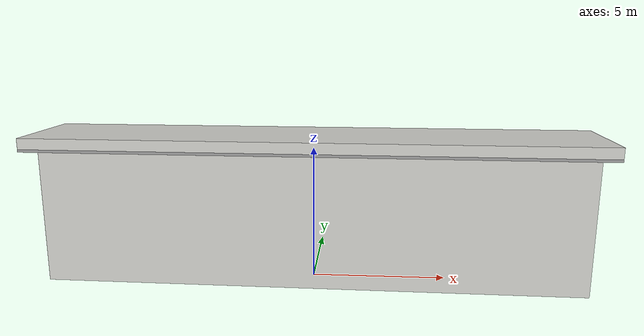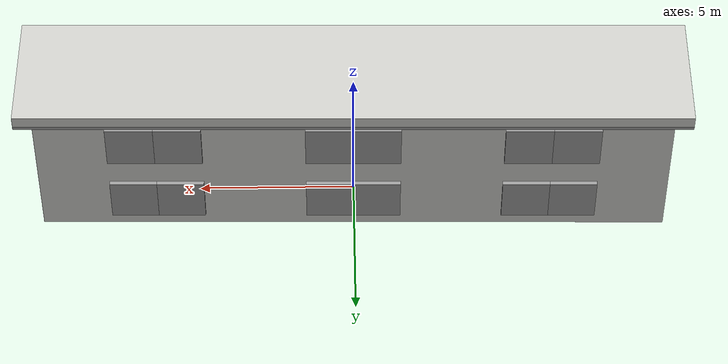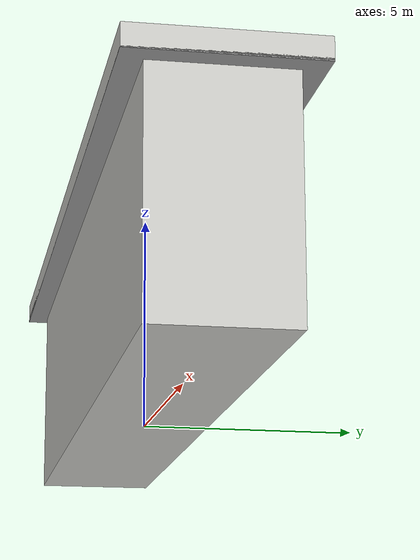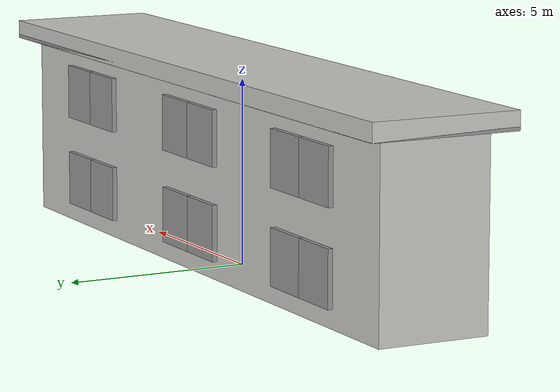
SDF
<?xml version='1.0'?>
<sdf version='1.6'>
  <model name='k_building_reverse'>
    <model name='k_building'>
      <pose frame=''>-0 -2e-05 0 0 -0 3.12622</pose>
      <link name='Floor_0'>
        <collision name='Floor_0_Collision'>
          <geometry>
            <box>
              <size>21 4 0.1</size>
            </box>
          </geometry>
          <pose frame=''>0 0 0.05 0 -0 0</pose>
        </collision>
        <visual name='Floor_0_Visual'>
          <pose frame=''>0 0 0.05 0 -0 0</pose>
          <geometry>
            <box>
              <size>21 4 0.1</size>
            </box>
          </geometry>
          <material>
            <script>
              <uri>file://media/materials/scripts/gazebo.material</uri>
              <name>Gazebo/Grey</name>
            </script>
            <ambient>1 1 1 1</ambient>
          </material>
        </visual>
        <pose frame=''>0 0 5 0 -0 0</pose>
      </link>
      <link name='Wall_0'>
        <collision name='Wall_0_Collision'>
          <geometry>
            <box>
              <size>20 3 5</size>
            </box>
          </geometry>
          <pose frame=''>0 0 2.5 0 -0 0</pose>
        </collision>
        <visual name='Wall_0_Visual'>
          <pose frame=''>0 0 2.5 0 -0 0</pose>
          <geometry>
            <box>
              <size>20 3 5</size>
            </box>
          </geometry>
          <material>
            <script>
              <uri>file://media/materials/scripts/gazebo.material</uri>
              <name>Gazebo/CeilingTiled</name>
            </script>
            <ambient>1 1 1 1</ambient>
          </material>
        </visual>
        <pose frame=''>0 0 0 0 -0 0</pose>
      </link>
      <link name='Wall_3'>
        <collision name='Wall_3_Collision'>
          <geometry>
            <box>
              <size>21 4 0.5</size>
            </box>
          </geometry>
          <pose frame=''>0 0 0.25 0 -0 0</pose>
        </collision>
        <visual name='Wall_3_Visual'>
          <pose frame=''>0 0 0.25 0 -0 0</pose>
          <geometry>
            <box>
              <size>21 4 0.5</size>
            </box>
          </geometry>
          <material>
            <script>
              <uri>file://media/materials/scripts/gazebo.material</uri>
              <name>Gazebo/CeilingTiled</name>
            </script>
            <ambient>0.435294 0.796078 0.67451 1</ambient>
          </material>
        </visual>
        <pose frame=''>0 0 5 0 -0 0</pose>
      </link>
      <link name='Window_0'>
        <collision name='Window_0_Collision'>
          <geometry>
            <box>
              <size>1.5 0.17 1.5</size>
            </box>
          </geometry>
          <pose frame=''>0 0 0.75 0 -0 0</pose>
        </collision>
        <visual name='Window_0_Visual'>
          <pose frame=''>0 0 0.75 0 -0 0</pose>
          <geometry>
            <box>
              <size>1.5 0.17 1.5</size>
            </box>
          </geometry>
          <material>
            <script>
              <uri>file://media/materials/scripts/gazebo.material</uri>
              <name>Gazebo/Grey</name>
            </script>
          </material>
        </visual>
        <pose frame=''>-7 -1.55 0.5 0 -0 0</pose>
      </link>
      <link name='Window_1'>
        <collision name='Window_1_Collision'>
          <geometry>
            <box>
              <size>1.5 0.17 1.5</size>
            </box>
          </geometry>
          <pose frame=''>0 0 0.75 0 -0 0</pose>
        </collision>
        <visual name='Window_1_Visual'>
          <pose frame=''>0 0 0.75 0 -0 0</pose>
          <geometry>
            <box>
              <size>1.5 0.17 1.5</size>
            </box>
          </geometry>
          <material>
            <script>
              <uri>file://media/materials/scripts/gazebo.material</uri>
              <name>Gazebo/Grey</name>
            </script>
          </material>
        </visual>
        <pose frame=''>-5.5 -1.55 0.5 0 -0 0</pose>
      </link>
      <link name='Window_10'>
        <collision name='Window_10_Collision'>
          <geometry>
            <box>
              <size>1.5 0.17 1.5</size>
            </box>
          </geometry>
          <pose frame=''>0 0 0.75 0 -0 0</pose>
        </collision>
        <visual name='Window_10_Visual'>
          <pose frame=''>0 0 0.75 0 -0 0</pose>
          <geometry>
            <box>
              <size>1.5 0.17 1.5</size>
            </box>
          </geometry>
          <material>
            <script>
              <uri>file://media/materials/scripts/gazebo.material</uri>
              <name>Gazebo/Grey</name>
            </script>
          </material>
        </visual>
        <pose frame=''>5.5 -1.55 3 0 -0 0</pose>
      </link>
      <link name='Window_11'>
        <collision name='Window_11_Collision'>
          <geometry>
            <box>
              <size>1.5 0.17 1.5</size>
            </box>
          </geometry>
          <pose frame=''>0 0 0.75 0 -0 0</pose>
        </collision>
        <visual name='Window_11_Visual'>
          <pose frame=''>0 0 0.75 0 -0 0</pose>
          <geometry>
            <box>
              <size>1.5 0.17 1.5</size>
            </box>
          </geometry>
          <material>
            <script>
              <uri>file://media/materials/scripts/gazebo.material</uri>
              <name>Gazebo/Grey</name>
            </script>
          </material>
        </visual>
        <pose frame=''>7 -1.55 3 0 -0 0</pose>
      </link>
      <link name='Window_2'>
        <collision name='Window_2_Collision'>
          <geometry>
            <box>
              <size>1.5 0.17 1.5</size>
            </box>
          </geometry>
          <pose frame=''>0 0 0.75 0 -0 0</pose>
        </collision>
        <visual name='Window_2_Visual'>
          <pose frame=''>0 0 0.75 0 -0 0</pose>
          <geometry>
            <box>
              <size>1.5 0.17 1.5</size>
            </box>
          </geometry>
          <material>
            <script>
              <uri>file://media/materials/scripts/gazebo.material</uri>
              <name>Gazebo/Grey</name>
            </script>
          </material>
        </visual>
        <pose frame=''>-0.75 -1.55 0.5 0 -0 0</pose>
      </link>
      <link name='Window_3'>
        <collision name='Window_3_Collision'>
          <geometry>
            <box>
              <size>1.5 0.17 1.5</size>
            </box>
          </geometry>
          <pose frame=''>0 0 0.75 0 -0 0</pose>
        </collision>
        <visual name='Window_3_Visual'>
          <pose frame=''>0 0 0.75 0 -0 0</pose>
          <geometry>
            <box>
              <size>1.5 0.17 1.5</size>
            </box>
          </geometry>
          <material>
            <script>
              <uri>file://media/materials/scripts/gazebo.material</uri>
              <name>Gazebo/Grey</name>
            </script>
          </material>
        </visual>
        <pose frame=''>0.75 -1.55 0.5 0 -0 0</pose>
      </link>
      <link name='Window_4'>
        <collision name='Window_4_Collision'>
          <geometry>
            <box>
              <size>1.5 0.17 1.5</size>
            </box>
          </geometry>
          <pose frame=''>0 0 0.75 0 -0 0</pose>
        </collision>
        <visual name='Window_4_Visual'>
          <pose frame=''>0 0 0.75 0 -0 0</pose>
          <geometry>
            <box>
              <size>1.5 0.17 1.5</size>
            </box>
          </geometry>
          <material>
            <script>
              <uri>file://media/materials/scripts/gazebo.material</uri>
              <name>Gazebo/Grey</name>
            </script>
          </material>
        </visual>
        <pose frame=''>5.5 -1.55 0.5 0 -0 0</pose>
      </link>
      <link name='Window_5'>
        <collision name='Window_5_Collision'>
          <geometry>
            <box>
              <size>1.5 0.17 1.5</size>
            </box>
          </geometry>
          <pose frame=''>0 0 0.75 0 -0 0</pose>
        </collision>
        <visual name='Window_5_Visual'>
          <pose frame=''>0 0 0.75 0 -0 0</pose>
          <geometry>
            <box>
              <size>1.5 0.17 1.5</size>
            </box>
          </geometry>
          <material>
            <script>
              <uri>file://media/materials/scripts/gazebo.material</uri>
              <name>Gazebo/Grey</name>
            </script>
          </material>
        </visual>
        <pose frame=''>7 -1.55 0.5 0 -0 0</pose>
      </link>
      <link name='Window_6'>
        <collision name='Window_6_Collision'>
          <geometry>
            <box>
              <size>1.5 0.17 1.5</size>
            </box>
          </geometry>
          <pose frame=''>0 0 0.75 0 -0 0</pose>
        </collision>
        <visual name='Window_6_Visual'>
          <pose frame=''>0 0 0.75 0 -0 0</pose>
          <geometry>
            <box>
              <size>1.5 0.17 1.5</size>
            </box>
          </geometry>
          <material>
            <script>
              <uri>file://media/materials/scripts/gazebo.material</uri>
              <name>Gazebo/Grey</name>
            </script>
          </material>
        </visual>
        <pose frame=''>-7 -1.55 3 0 -0 0</pose>
      </link>
      <link name='Window_7'>
        <collision name='Window_7_Collision'>
          <geometry>
            <box>
              <size>1.5 0.17 1.5</size>
            </box>
          </geometry>
          <pose frame=''>0 0 0.75 0 -0 0</pose>
        </collision>
        <visual name='Window_7_Visual'>
          <pose frame=''>0 0 0.75 0 -0 0</pose>
          <geometry>
            <box>
              <size>1.5 0.17 1.5</size>
            </box>
          </geometry>
          <material>
            <script>
              <uri>file://media/materials/scripts/gazebo.material</uri>
              <name>Gazebo/Grey</name>
            </script>
          </material>
        </visual>
        <pose frame=''>-5.5 -1.55 3 0 -0 0</pose>
      </link>
      <link name='Window_8'>
        <collision name='Window_8_Collision'>
          <geometry>
            <box>
              <size>1.5 0.17 1.5</size>
            </box>
          </geometry>
          <pose frame=''>0 0 0.75 0 -0 0</pose>
        </collision>
        <visual name='Window_8_Visual'>
          <pose frame=''>0 0 0.75 0 -0 0</pose>
          <geometry>
            <box>
              <size>1.5 0.17 1.5</size>
            </box>
          </geometry>
          <material>
            <script>
              <uri>file://media/materials/scripts/gazebo.material</uri>
              <name>Gazebo/Grey</name>
            </script>
          </material>
        </visual>
        <pose frame=''>-0.75 -1.55 3 0 -0 0</pose>
      </link>
      <link name='Window_9'>
        <collision name='Window_9_Collision'>
          <geometry>
            <box>
              <size>1.5 0.17 1.5</size>
            </box>
          </geometry>
          <pose frame=''>0 0 0.75 0 -0 0</pose>
        </collision>
        <visual name='Window_9_Visual'>
          <pose frame=''>0 0 0.75 0 -0 0</pose>
          <geometry>
            <box>
              <size>1.5 0.17 1.5</size>
            </box>
          </geometry>
          <material>
            <script>
              <uri>file://media/materials/scripts/gazebo.material</uri>
              <name>Gazebo/Grey</name>
            </script>
          </material>
        </visual>
        <pose frame=''>0.75 -1.55 3 0 -0 0</pose>
      </link>
      <static>1</static>
    </model>
    <static>0</static>
    <allow_auto_disable>1</allow_auto_disable>
  </model>
</sdf>
